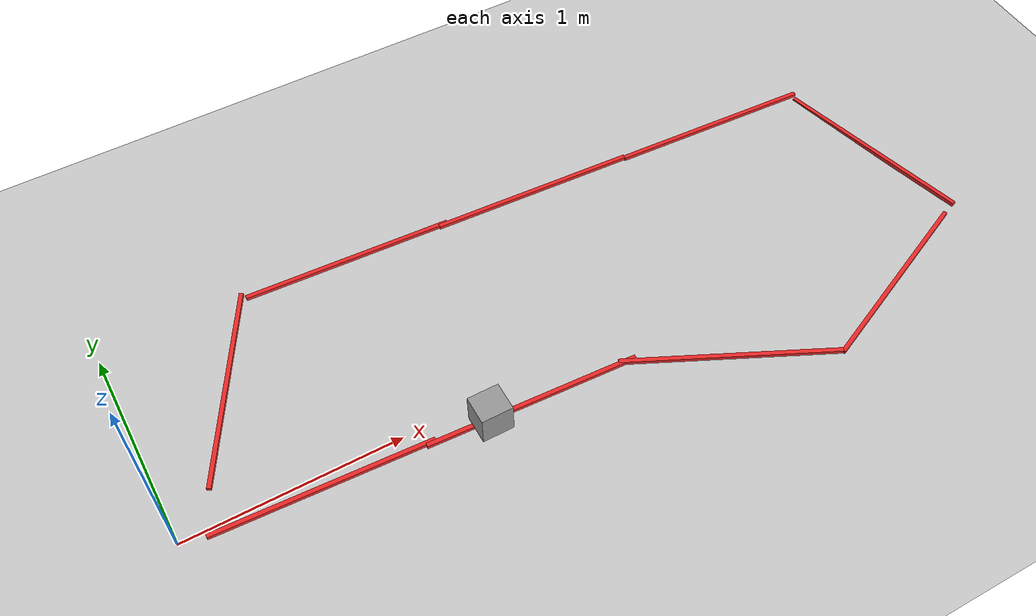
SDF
<?xml version="1.0" ?>

<sdf version="1.5">
	<world name="default">
		<!-- A global light source -->
		<include>
			<uri>model://sun</uri>
		</include>

		<!-- A ground plane -->
		<include>
			<uri>model://ground_plane</uri>
		</include>

		<include>
            <uri>model://line_fallower_track</uri>
            <static>true</static>
            <pose>1.465272 -1.021163 0.47 0 0 0</pose> <!-- Adjust the pose as needed -->
        </include>
	<include>
            <uri>model://obstacle</uri>
            <static>true</static>
            <pose>1.353057 -0.125243 0.090429 0 0 0</pose> <!-- Adjust the pose as needed -->
        </include>

	</world>
</sdf>

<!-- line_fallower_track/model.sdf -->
<sdf version='1.5'>
  <model name='line_fallower_track'>
    <link name='link'>
      <inertial>
        <mass>1</mass>
        <inertia>
          <ixx>0.166667</ixx>
          <ixy>0</ixy>
          <ixz>0</ixz>
          <iyy>0.166667</iyy>
          <iyz>0</iyz>
          <izz>0.166667</izz>
        </inertia>
        <pose>0 0 0 0 -0 0</pose>
      </inertial>
      <self_collide>0</self_collide>
      <enable_wind>0</enable_wind>
      <kinematic>0</kinematic>
      <pose>-0.85352 0.968434 -0.466364 -0 -0 -1.62239</pose>
      <gravity>1</gravity>
      <visual name='visual'>
        <geometry>
          <box>
            <size>0.02 1 0.02</size>
          </box>
        </geometry>
        <material>
          <script>
            <name>Gazebo/Grey</name>
            <uri>file://media/materials/scripts/gazebo.material</uri>
          </script>
          <shader type='pixel'>
            <normal_map>__default__</normal_map>
          </shader>
          <ambient>0.8 0 0 1</ambient>
          <diffuse>0.937 0.161 0.161 1</diffuse>
          <specular>0.01 0.01 0.01 1</specular>
          <emissive>0 0 0 1</emissive>
        </material>
        <pose>0 0 0 0 -0 0</pose>
        <transparency>0</transparency>
        <cast_shadows>1</cast_shadows>
      </visual>
    </link>
    <link name='link_clone'>
      <inertial>
        <mass>1</mass>
        <inertia>
          <ixx>0.166667</ixx>
          <ixy>0</ixy>
          <ixz>0</ixz>
          <iyy>0.166667</iyy>
          <iyz>0</iyz>
          <izz>0.166667</izz>
        </inertia>
        <pose>0 0 0 0 -0 0</pose>
      </inertial>
      <self_collide>0</self_collide>
      <enable_wind>0</enable_wind>
      <kinematic>0</kinematic>
      <pose>0.099661 0.907143 -0.466355 -1e-06 1e-05 -1.62239</pose>
      <gravity>1</gravity>
      <visual name='visual'>
        <geometry>
          <box>
            <size>0.02 1 0.02</size>
          </box>
        </geometry>
        <material>
          <script>
            <name>Gazebo/Grey</name>
            <uri>file://media/materials/scripts/gazebo.material</uri>
          </script>
          <shader type='pixel'>
            <normal_map>__default__</normal_map>
          </shader>
          <ambient>0.8 0 0 1</ambient>
          <diffuse>0.937 0.161 0.161 1</diffuse>
          <specular>0.01 0.01 0.01 1</specular>
          <emissive>0 0 0 1</emissive>
        </material>
        <pose>0 0 0 0 -0 0</pose>
        <transparency>0</transparency>
        <cast_shadows>1</cast_shadows>
      </visual>
    </link>
    <link name='link_clone_0'>
      <inertial>
        <mass>1</mass>
        <inertia>
          <ixx>0.166667</ixx>
          <ixy>0</ixy>
          <ixz>0</ixz>
          <iyy>0.166667</iyy>
          <iyz>0</iyz>
          <izz>0.166667</izz>
        </inertia>
        <pose>0 0 0 0 -0 0</pose>
      </inertial>
      <self_collide>0</self_collide>
      <enable_wind>0</enable_wind>
      <kinematic>0</kinematic>
      <pose>0.970565 0.67847 -0.466357 -4e-06 9e-06 -2.02542</pose>
      <gravity>1</gravity>
      <visual name='visual'>
        <geometry>
          <box>
            <size>0.02 1 0.02</size>
          </box>
        </geometry>
        <material>
          <script>
            <name>Gazebo/Grey</name>
            <uri>file://media/materials/scripts/gazebo.material</uri>
          </script>
          <shader type='pixel'>
            <normal_map>__default__</normal_map>
          </shader>
          <ambient>0.8 0 0 1</ambient>
          <diffuse>0.937 0.161 0.161 1</diffuse>
          <specular>0.01 0.01 0.01 1</specular>
          <emissive>0 0 0 1</emissive>
        </material>
        <pose>0 0 0 0 -0 0</pose>
        <transparency>0</transparency>
        <cast_shadows>1</cast_shadows>
      </visual>
    </link>
    <link name='link_clone_1'>
      <inertial>
        <mass>1</mass>
        <inertia>
          <ixx>0.166667</ixx>
          <ixy>0</ixy>
          <ixz>0</ixz>
          <iyy>0.166667</iyy>
          <iyz>0</iyz>
          <izz>0.166667</izz>
        </inertia>
        <pose>0 0 0 0 -0 0</pose>
      </inertial>
      <self_collide>0</self_collide>
      <enable_wind>0</enable_wind>
      <kinematic>0</kinematic>
      <pose>1.87122 0.654087 -0.466358 4e-06 9e-06 -1.15513</pose>
      <gravity>1</gravity>
      <visual name='visual'>
        <geometry>
          <box>
            <size>0.02 1 0.02</size>
          </box>
        </geometry>
        <material>
          <script>
            <name>Gazebo/Grey</name>
            <uri>file://media/materials/scripts/gazebo.material</uri>
          </script>
          <shader type='pixel'>
            <normal_map>__default__</normal_map>
          </shader>
          <ambient>0.8 0 0 1</ambient>
          <diffuse>0.937 0.161 0.161 1</diffuse>
          <specular>0.01 0.01 0.01 1</specular>
          <emissive>0 0 0 1</emissive>
        </material>
        <pose>0 0 0 0 -0 0</pose>
        <transparency>0</transparency>
        <cast_shadows>1</cast_shadows>
      </visual>
    </link>
    <link name='link_clone_2'>
      <inertial>
        <mass>1</mass>
        <inertia>
          <ixx>0.166667</ixx>
          <ixy>0</ixy>
          <ixz>0</ixz>
          <iyy>0.166667</iyy>
          <iyz>0</iyz>
          <izz>0.166667</izz>
        </inertia>
        <pose>0 0 0 0 -0 0</pose>
      </inertial>
      <self_collide>0</self_collide>
      <enable_wind>0</enable_wind>
      <kinematic>0</kinematic>
      <pose>2.27772 1.36044 -0.466351 0.022498 0.006984 -2.90592</pose>
      <gravity>1</gravity>
      <visual name='visual'>
        <geometry>
          <box>
            <size>0.02 1 0.02</size>
          </box>
        </geometry>
        <material>
          <script>
            <name>Gazebo/Grey</name>
            <uri>file://media/materials/scripts/gazebo.material</uri>
          </script>
          <shader type='pixel'>
            <normal_map>__default__</normal_map>
          </shader>
          <ambient>0.8 0 0 1</ambient>
          <diffuse>0.937 0.161 0.161 1</diffuse>
          <specular>0.01 0.01 0.01 1</specular>
          <emissive>0 0 0 1</emissive>
        </material>
        <pose>0 0 0 0 -0 0</pose>
        <transparency>0</transparency>
        <cast_shadows>1</cast_shadows>
      </visual>
    </link>
    <link name='link_clone_3'>
      <inertial>
        <mass>1</mass>
        <inertia>
          <ixx>0.166667</ixx>
          <ixy>0</ixy>
          <ixz>0</ixz>
          <iyy>0.166667</iyy>
          <iyz>0</iyz>
          <izz>0.166667</izz>
        </inertia>
        <pose>0 0 0 0 -0 0</pose>
      </inertial>
      <self_collide>0</self_collide>
      <enable_wind>0</enable_wind>
      <kinematic>0</kinematic>
      <pose>1.67711 1.89456 -0.466345 -1e-06 1e-05 -1.62239</pose>
      <gravity>1</gravity>
      <visual name='visual'>
        <geometry>
          <box>
            <size>0.02 1 0.02</size>
          </box>
        </geometry>
        <material>
          <script>
            <name>Gazebo/Grey</name>
            <uri>file://media/materials/scripts/gazebo.material</uri>
          </script>
          <shader type='pixel'>
            <normal_map>__default__</normal_map>
          </shader>
          <ambient>0.8 0 0 1</ambient>
          <diffuse>0.937 0.161 0.161 1</diffuse>
          <specular>0.01 0.01 0.01 1</specular>
          <emissive>0 0 0 1</emissive>
        </material>
        <pose>0 0 0 0 -0 0</pose>
        <transparency>0</transparency>
        <cast_shadows>1</cast_shadows>
      </visual>
    </link>
    <link name='link_clone_4'>
      <inertial>
        <mass>1</mass>
        <inertia>
          <ixx>0.166667</ixx>
          <ixy>0</ixy>
          <ixz>0</ixz>
          <iyy>0.166667</iyy>
          <iyz>0</iyz>
          <izz>0.166667</izz>
        </inertia>
        <pose>0 0 0 0 -0 0</pose>
      </inertial>
      <self_collide>0</self_collide>
      <enable_wind>0</enable_wind>
      <kinematic>0</kinematic>
      <pose>0.681877 1.95227 -0.466345 -1e-06 1e-05 -1.62239</pose>
      <gravity>1</gravity>
      <visual name='visual'>
        <geometry>
          <box>
            <size>0.02 1 0.02</size>
          </box>
        </geometry>
        <material>
          <script>
            <name>Gazebo/Grey</name>
            <uri>file://media/materials/scripts/gazebo.material</uri>
          </script>
          <shader type='pixel'>
            <normal_map>__default__</normal_map>
          </shader>
          <ambient>0.8 0 0 1</ambient>
          <diffuse>0.937 0.161 0.161 1</diffuse>
          <specular>0.01 0.01 0.01 1</specular>
          <emissive>0 0 0 1</emissive>
        </material>
        <pose>0 0 0 0 -0 0</pose>
        <transparency>0</transparency>
        <cast_shadows>1</cast_shadows>
      </visual>
    </link>
    <link name='link_clone_5'>
      <inertial>
        <mass>1</mass>
        <inertia>
          <ixx>0.166667</ixx>
          <ixy>0</ixy>
          <ixz>0</ixz>
          <iyy>0.166667</iyy>
          <iyz>0</iyz>
          <izz>0.166667</izz>
        </inertia>
        <pose>0 0 0 0 -0 0</pose>
      </inertial>
      <self_collide>0</self_collide>
      <enable_wind>0</enable_wind>
      <kinematic>0</kinematic>
      <pose>-0.273679 2.00901 -0.466344 -1e-06 1e-05 -1.62239</pose>
      <gravity>1</gravity>
      <visual name='visual'>
        <geometry>
          <box>
            <size>0.02 1 0.02</size>
          </box>
        </geometry>
        <material>
          <script>
            <name>Gazebo/Grey</name>
            <uri>file://media/materials/scripts/gazebo.material</uri>
          </script>
          <shader type='pixel'>
            <normal_map>__default__</normal_map>
          </shader>
          <ambient>0.8 0 0 1</ambient>
          <diffuse>0.937 0.161 0.161 1</diffuse>
          <specular>0.01 0.01 0.01 1</specular>
          <emissive>0 0 0 1</emissive>
        </material>
        <pose>0 0 0 0 -0 0</pose>
        <transparency>0</transparency>
        <cast_shadows>1</cast_shadows>
      </visual>
    </link>
    <link name='link_clone_6'>
      <inertial>
        <mass>1</mass>
        <inertia>
          <ixx>0.166667</ixx>
          <ixy>0</ixy>
          <ixz>0</ixz>
          <iyy>0.166667</iyy>
          <iyz>0</iyz>
          <izz>0.166667</izz>
        </inertia>
        <pose>0 0 0 0 -0 0</pose>
      </inertial>
      <self_collide>0</self_collide>
      <enable_wind>0</enable_wind>
      <kinematic>0</kinematic>
      <pose>-1.02576 1.62953 -0.466348 9e-06 5e-06 -0.506377</pose>
      <gravity>1</gravity>
      <visual name='visual'>
        <geometry>
          <box>
            <size>0.02 1 0.02</size>
          </box>
        </geometry>
        <material>
          <script>
            <name>Gazebo/Grey</name>
            <uri>file://media/materials/scripts/gazebo.material</uri>
          </script>
          <shader type='pixel'>
            <normal_map>__default__</normal_map>
          </shader>
          <ambient>0.8 0 0 1</ambient>
          <diffuse>0.937 0.161 0.161 1</diffuse>
          <specular>0.01 0.01 0.01 1</specular>
          <emissive>0 0 0 1</emissive>
        </material>
        <pose>0 0 0 0 -0 0</pose>
        <transparency>0</transparency>
        <cast_shadows>1</cast_shadows>
      </visual>
    </link>
    <static>0</static>
    <allow_auto_disable>1</allow_auto_disable>
  </model>
</sdf>

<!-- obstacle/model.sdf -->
<sdf version='1.5'>
  <model name='obstacle'>
    <link name='link'>
      <inertial>
        <mass>1</mass>
        <inertia>
          <ixx>0.166667</ixx>
          <ixy>0</ixy>
          <ixz>0</ixz>
          <iyy>0.166667</iyy>
          <iyz>0</iyz>
          <izz>0.166667</izz>
        </inertia>
      </inertial>
      <self_collide>0</self_collide>
      <enable_wind>0</enable_wind>
      <kinematic>0</kinematic>
      <pose frame=''>0 0 0 0 -0 0</pose>
      <visual name='visual'>
        <geometry>
          <box>
            <size>0.146932 0.135055 0.155431</size>
          </box>
        </geometry>
        <material>
          <script>
            <name>Gazebo/Grey</name>
            <uri>file://media/materials/scripts/gazebo.material</uri>
          </script>
        </material>
        <pose frame=''>0 0 0 0 -0 0</pose>
        <transparency>0</transparency>
        <cast_shadows>1</cast_shadows>
      </visual>
      <collision name='collision'>
        <laser_retro>0</laser_retro>
        <max_contacts>10</max_contacts>
        <pose frame=''>0 0 0 0 -0 0</pose>
        <geometry>
          <box>
            <size>0.146932 0.135055 0.155431</size>
          </box>
        </geometry>
        <surface>
          <friction>
            <ode>
              <mu>1</mu>
              <mu2>1</mu2>
              <fdir1>0 0 0</fdir1>
              <slip1>0</slip1>
              <slip2>0</slip2>
            </ode>
            <torsional>
              <coefficient>1</coefficient>
              <patch_radius>0</patch_radius>
              <surface_radius>0</surface_radius>
              <use_patch_radius>1</use_patch_radius>
              <ode>
                <slip>0</slip>
              </ode>
            </torsional>
          </friction>
          <bounce>
            <restitution_coefficient>0</restitution_coefficient>
            <threshold>1e+06</threshold>
          </bounce>
          <contact>
            <collide_without_contact>0</collide_without_contact>
            <collide_without_contact_bitmask>1</collide_without_contact_bitmask>
            <collide_bitmask>1</collide_bitmask>
            <ode>
              <soft_cfm>0</soft_cfm>
              <soft_erp>0.2</soft_erp>
              <kp>1e+13</kp>
              <kd>1</kd>
              <max_vel>0.01</max_vel>
              <min_depth>0</min_depth>
            </ode>
            <bullet>
              <split_impulse>1</split_impulse>
              <split_impulse_penetration_threshold>-0.01</split_impulse_penetration_threshold>
              <soft_cfm>0</soft_cfm>
              <soft_erp>0.2</soft_erp>
              <kp>1e+13</kp>
              <kd>1</kd>
            </bullet>
          </contact>
        </surface>
      </collision>
    </link>
    <static>0</static>
    <allow_auto_disable>1</allow_auto_disable>
  </model>
</sdf>
